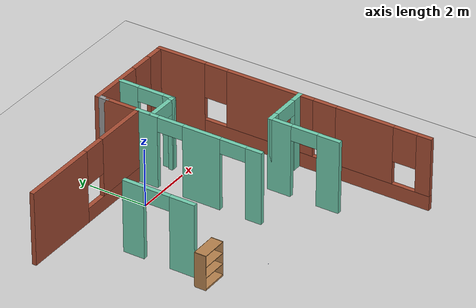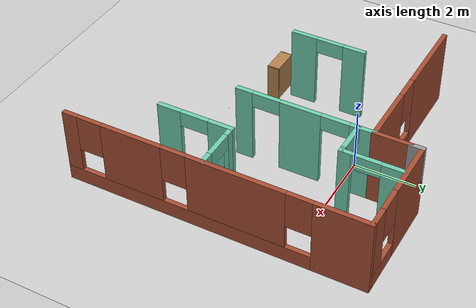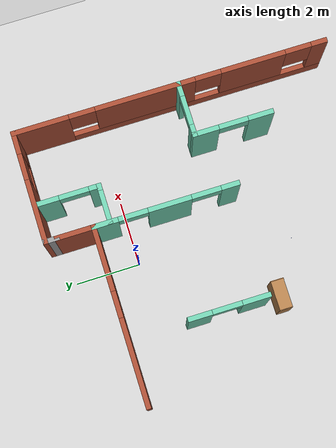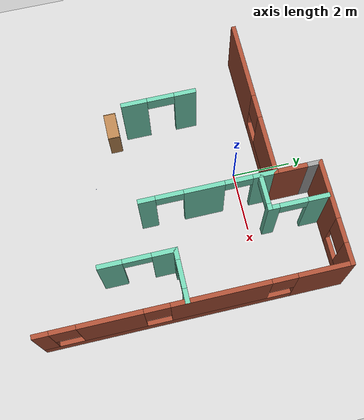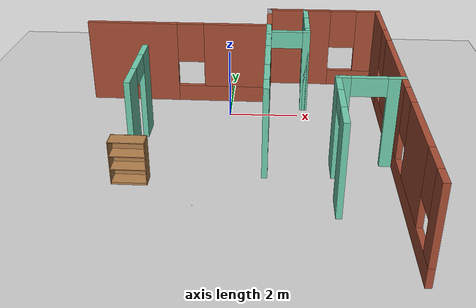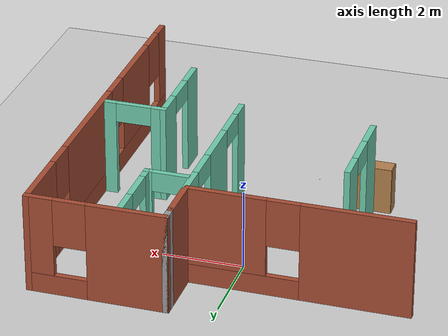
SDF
<sdf version="1.6">
 <world name="default">
  <model name="ground_plane">
   <static>1</static>
   <link name="link">
    <collision name="collision">
     <geometry><plane><normal>0 0 1</normal><size>100 100</size></plane></geometry>
     <surface>
      <contact><collide_bitmask>65535</collide_bitmask></contact>
      <friction><ode><mu>100</mu><mu2>50</mu2></ode></friction>
     </surface>
    </collision>
    <visual name="visual">
     <cast_shadows>0</cast_shadows>
     <geometry><plane><normal>0 0 1</normal><size>100 100</size></plane></geometry>
     <material>
      <script><uri>file://media/materials/scripts/gazebo.material</uri><name>Gazebo/Grey</name></script>
     </material>
    </visual>
   </link>
  </model>
  <model name="my_apartment">
   <pose>-3.10653 -3.79856 0 0 -0 0</pose>
   <link name="Wall_0">
    <pose>1.52918 4.775 0 0 -0 0</pose>
    <visual name="Wall_0_Visual_0">
     <pose>-1.4096 0 1.25 0 -0 0</pose>
     <geometry><box><size>2.6808 0.15 2.5</size></box></geometry>
     <material>
      <script><uri>file://media/materials/scripts/gazebo.material</uri><name>Gazebo/Bricks</name></script>
      <ambient>0.435294 0.796078 0.67451 1</ambient>
     </material>
     <meta><layer>0</layer></meta>
    </visual>
    <collision name="Wall_0_Collision_0">
     <geometry><box><size>2.6808 0.15 2.5</size></box></geometry>
     <pose>-1.4096 0 1.25 0 -0 0</pose>
    </collision>
    <visual name="Wall_0_Visual_1">
     <pose>1.3404 0 0.25 0 -0 0</pose>
     <geometry><box><size>2.8192 0.15 0.5</size></box></geometry>
     <material>
      <script><uri>file://media/materials/scripts/gazebo.material</uri><name>Gazebo/Bricks</name></script>
      <ambient>0.435294 0.796078 0.67451 1</ambient>
     </material>
     <meta><layer>0</layer></meta>
    </visual>
    <collision name="Wall_0_Collision_1">
     <geometry><box><size>2.8192 0.15 0.5</size></box></geometry>
     <pose>1.3404 0 0.25 0 -0 0</pose>
    </collision>
    <visual name="Wall_0_Visual_2">
     <pose>1.7404 0 1.5 0 -0 0</pose>
     <geometry><box><size>2.0192 0.15 2</size></box></geometry>
     <material>
      <script><uri>file://media/materials/scripts/gazebo.material</uri><name>Gazebo/Bricks</name></script>
      <ambient>0.435294 0.796078 0.67451 1</ambient>
     </material>
     <meta><layer>0</layer></meta>
    </visual>
    <collision name="Wall_0_Collision_2">
     <geometry><box><size>2.0192 0.15 2</size></box></geometry>
     <pose>1.7404 0 1.5 0 -0 0</pose>
    </collision>
    <visual name="Wall_0_Visual_3">
     <pose>0.330804 0 1.9 0 -0 0</pose>
     <geometry><box><size>0.8 0.15 1.2</size></box></geometry>
     <material>
      <script><uri>file://media/materials/scripts/gazebo.material</uri><name>Gazebo/Bricks</name></script>
      <ambient>0.435294 0.796078 0.67451 1</ambient>
     </material>
     <meta><layer>0</layer></meta>
    </visual>
    <collision name="Wall_0_Collision_3">
     <geometry><box><size>0.8 0.15 1.2</size></box></geometry>
     <pose>0.330804 0 1.9 0 -0 0</pose>
    </collision>
   </link>
   <link name="Wall_1">
    <collision name="Wall_1_Collision">
     <geometry><box><size>1.25 0.15 2.5</size></box></geometry>
     <pose>0 0 1.25 0 -0 0</pose>
    </collision>
    <visual name="Wall_1_Visual">
     <pose>0 0 1.25 0 -0 0</pose>
     <geometry><box><size>1.25 0.15 2.5</size></box></geometry>
     <material>
      <script><uri>file://media/materials/scripts/gazebo.material</uri><name>Gazebo/Bricks</name></script>
      <ambient>0.435294 0.796078 0.67451 1</ambient>
     </material>
     <meta><layer>0</layer></meta>
    </visual>
    <pose>4.20418 5.325 0 0 -0 1.5708</pose>
   </link>
   <link name="Wall_17">
    <pose>4.20435 2.59978 0 0 -0 1.57088</pose>
    <visual name="Wall_17_Visual_0">
     <pose>-1.96795 0 1.25 0 -0 0</pose>
     <geometry><box><size>0.564378 0.15 2.5</size></box></geometry>
     <material>
      <script><uri>file://media/materials/scripts/gazebo.material</uri><name>Gazebo/Grey</name></script>
      <ambient>0.435294 0.796078 0.67451 1</ambient>
     </material>
     <meta><layer>0</layer></meta>
    </visual>
    <collision name="Wall_17_Collision_0">
     <geometry><box><size>0.564378 0.15 2.5</size></box></geometry>
     <pose>-1.96795 0 1.25 0 -0 0</pose>
    </collision>
    <visual name="Wall_17_Visual_1">
     <pose>-0.125495 0 1.25 0 -0 0</pose>
     <geometry><box><size>1.32054 0.15 2.5</size></box></geometry>
     <material>
      <script><uri>file://media/materials/scripts/gazebo.material</uri><name>Gazebo/Grey</name></script>
      <ambient>0.435294 0.796078 0.67451 1</ambient>
     </material>
     <meta><layer>0</layer></meta>
    </visual>
    <collision name="Wall_17_Collision_1">
     <geometry><box><size>1.32054 0.15 2.5</size></box></geometry>
     <pose>-0.125495 0 1.25 0 -0 0</pose>
    </collision>
    <visual name="Wall_17_Visual_2">
     <pose>1.84246 0 1.25 0 -0 0</pose>
     <geometry><box><size>0.815367 0.15 2.5</size></box></geometry>
     <material>
      <script><uri>file://media/materials/scripts/gazebo.material</uri><name>Gazebo/Grey</name></script>
      <ambient>0.435294 0.796078 0.67451 1</ambient>
     </material>
     <meta><layer>0</layer></meta>
    </visual>
    <collision name="Wall_17_Collision_2">
     <geometry><box><size>0.815367 0.15 2.5</size></box></geometry>
     <pose>1.84246 0 1.25 0 -0 0</pose>
    </collision>
    <visual name="Wall_17_Visual_3">
     <pose>-1.23577 0 2.25 0 -0 0</pose>
     <geometry><box><size>0.9 0.15 0.5</size></box></geometry>
     <material>
      <script><uri>file://media/materials/scripts/gazebo.material</uri><name>Gazebo/Grey</name></script>
      <ambient>0.435294 0.796078 0.67451 1</ambient>
     </material>
     <meta><layer>0</layer></meta>
    </visual>
    <collision name="Wall_17_Collision_3">
     <geometry><box><size>0.9 0.15 0.5</size></box></geometry>
     <pose>-1.23577 0 2.25 0 -0 0</pose>
    </collision>
    <visual name="Wall_17_Visual_4">
     <pose>0.984776 0 2.25 0 -0 0</pose>
     <geometry><box><size>0.9 0.15 0.5</size></box></geometry>
     <material>
      <script><uri>file://media/materials/scripts/gazebo.material</uri><name>Gazebo/Grey</name></script>
      <ambient>0.435294 0.796078 0.67451 1</ambient>
     </material>
     <meta><layer>0</layer></meta>
    </visual>
    <collision name="Wall_17_Collision_4">
     <geometry><box><size>0.9 0.15 0.5</size></box></geometry>
     <pose>0.984776 0 2.25 0 -0 0</pose>
    </collision>
   </link>
   <link name="Wall_2">
    <collision name="Wall_2_Collision">
     <geometry><box><size>0.5 0.15 2.5</size></box></geometry>
     <pose>0 0 1.25 0 -0 0</pose>
    </collision>
    <visual name="Wall_2_Visual">
     <pose>0 0 1.25 0 -0 0</pose>
     <geometry><box><size>0.5 0.15 2.5</size></box></geometry>
     <material>
      <script><uri>file://media/materials/scripts/gazebo.material</uri><name>Gazebo/Grey</name></script>
      <ambient>1 1 1 1</ambient>
     </material>
     <meta><layer>0</layer></meta>
    </visual>
    <pose>4.20418 6.05 0 0 -0 1.5708</pose>
   </link>
   <link name="Wall_23">
    <pose>0.843373 1.74021 0 0 0 -1.5708</pose>
    <visual name="Wall_23_Visual_0">
     <pose>-0.881649 0 1.25 0 -0 0</pose>
     <geometry><box><size>0.736702 0.15 2.5</size></box></geometry>
     <material>
      <script><uri>file://media/materials/scripts/gazebo.material</uri><name>Gazebo/Grey</name></script>
      <ambient>0.435294 0.796078 0.67451 1</ambient>
     </material>
     <meta><layer>0</layer></meta>
    </visual>
    <collision name="Wall_23_Collision_0">
     <geometry><box><size>0.736702 0.15 2.5</size></box></geometry>
     <pose>-0.881649 0 1.25 0 -0 0</pose>
    </collision>
    <visual name="Wall_23_Visual_1">
     <pose>0.818351 0 1.25 0 -0 0</pose>
     <geometry><box><size>0.863298 0.15 2.5</size></box></geometry>
     <material>
      <script><uri>file://media/materials/scripts/gazebo.material</uri><name>Gazebo/Grey</name></script>
      <ambient>0.435294 0.796078 0.67451 1</ambient>
     </material>
     <meta><layer>0</layer></meta>
    </visual>
    <collision name="Wall_23_Collision_1">
     <geometry><box><size>0.863298 0.15 2.5</size></box></geometry>
     <pose>0.818351 0 1.25 0 -0 0</pose>
    </collision>
    <visual name="Wall_23_Visual_2">
     <pose>-0.063298 0 2.25 0 -0 0</pose>
     <geometry><box><size>0.9 0.15 0.5</size></box></geometry>
     <material>
      <script><uri>file://media/materials/scripts/gazebo.material</uri><name>Gazebo/Grey</name></script>
      <ambient>0.435294 0.796078 0.67451 1</ambient>
     </material>
     <meta><layer>0</layer></meta>
    </visual>
    <collision name="Wall_23_Collision_2">
     <geometry><box><size>0.9 0.15 0.5</size></box></geometry>
     <pose>-0.063298 0 2.25 0 -0 0</pose>
    </collision>
   </link>
   <link name="Wall_27">
    <pose>4.7693 4.27848 0 0 -0 0</pose>
    <visual name="Wall_27_Visual_0">
     <pose>-0.558063 0 1.25 0 -0 0</pose>
     <geometry><box><size>0.133873 0.15 2.5</size></box></geometry>
     <material>
      <script><uri>file://media/materials/scripts/gazebo.material</uri><name>Gazebo/Grey</name></script>
      <ambient>0.435294 0.796078 0.67451 1</ambient>
     </material>
     <meta><layer>0</layer></meta>
    </visual>
    <collision name="Wall_27_Collision_0">
     <geometry><box><size>0.133873 0.15 2.5</size></box></geometry>
     <pose>-0.558063 0 1.25 0 -0 0</pose>
    </collision>
    <visual name="Wall_27_Visual_1">
     <pose>0.516937 0 1.25 0 -0 0</pose>
     <geometry><box><size>0.216127 0.15 2.5</size></box></geometry>
     <material>
      <script><uri>file://media/materials/scripts/gazebo.material</uri><name>Gazebo/Grey</name></script>
      <ambient>0.435294 0.796078 0.67451 1</ambient>
     </material>
     <meta><layer>0</layer></meta>
    </visual>
    <collision name="Wall_27_Collision_1">
     <geometry><box><size>0.216127 0.15 2.5</size></box></geometry>
     <pose>0.516937 0 1.25 0 -0 0</pose>
    </collision>
    <visual name="Wall_27_Visual_2">
     <pose>-0.041127 0 2.25 0 -0 0</pose>
     <geometry><box><size>0.9 0.15 0.5</size></box></geometry>
     <material>
      <script><uri>file://media/materials/scripts/gazebo.material</uri><name>Gazebo/Grey</name></script>
      <ambient>0.435294 0.796078 0.67451 1</ambient>
     </material>
     <meta><layer>0</layer></meta>
    </visual>
    <collision name="Wall_27_Collision_2">
     <geometry><box><size>0.9 0.15 0.5</size></box></geometry>
     <pose>-0.041127 0 2.25 0 -0 0</pose>
    </collision>
   </link>
   <link name="Wall_28">
    <pose>5.3193 5.20348 0 0 -0 1.5708</pose>
    <visual name="Wall_28_Visual_0">
     <pose>-0.805845 0 1.25 0 -0 0</pose>
     <geometry><box><size>0.38831 0.15 2.5</size></box></geometry>
     <material>
      <script><uri>file://media/materials/scripts/gazebo.material</uri><name>Gazebo/Grey</name></script>
      <ambient>0.435294 0.796078 0.67451 1</ambient>
     </material>
     <meta><layer>0</layer></meta>
    </visual>
    <collision name="Wall_28_Collision_0">
     <geometry><box><size>0.38831 0.15 2.5</size></box></geometry>
     <pose>-0.805845 0 1.25 0 -0 0</pose>
    </collision>
    <visual name="Wall_28_Visual_1">
     <pose>0.644155 0 1.25 0 -0 0</pose>
     <geometry><box><size>0.71169 0.15 2.5</size></box></geometry>
     <material>
      <script><uri>file://media/materials/scripts/gazebo.material</uri><name>Gazebo/Grey</name></script>
      <ambient>0.435294 0.796078 0.67451 1</ambient>
     </material>
     <meta><layer>0</layer></meta>
    </visual>
    <collision name="Wall_28_Collision_1">
     <geometry><box><size>0.71169 0.15 2.5</size></box></geometry>
     <pose>0.644155 0 1.25 0 -0 0</pose>
    </collision>
    <visual name="Wall_28_Visual_2">
     <pose>-0.16169 0 2.25 0 -0 0</pose>
     <geometry><box><size>0.9 0.15 0.5</size></box></geometry>
     <material>
      <script><uri>file://media/materials/scripts/gazebo.material</uri><name>Gazebo/Grey</name></script>
      <ambient>0.435294 0.796078 0.67451 1</ambient>
     </material>
     <meta><layer>0</layer></meta>
    </visual>
    <collision name="Wall_28_Collision_2">
     <geometry><box><size>0.9 0.15 0.5</size></box></geometry>
     <pose>-0.16169 0 2.25 0 -0 0</pose>
    </collision>
   </link>
   <link name="Wall_3">
    <pose>5.87918 6.225 0 0 -0 0</pose>
    <visual name="Wall_3_Visual_0">
     <pose>-0.759972 0 1.25 0 -0 0</pose>
     <geometry><box><size>1.98006 0.15 2.5</size></box></geometry>
     <material>
      <script><uri>file://media/materials/scripts/gazebo.material</uri><name>Gazebo/Bricks</name></script>
      <ambient>0.435294 0.796078 0.67451 1</ambient>
     </material>
     <meta><layer>0</layer></meta>
    </visual>
    <collision name="Wall_3_Collision_0">
     <geometry><box><size>1.98006 0.15 2.5</size></box></geometry>
     <pose>-0.759972 0 1.25 0 -0 0</pose>
    </collision>
    <visual name="Wall_3_Visual_1">
     <pose>0.990028 0 0.25 0 -0 0</pose>
     <geometry><box><size>1.51994 0.15 0.5</size></box></geometry>
     <material>
      <script><uri>file://media/materials/scripts/gazebo.material</uri><name>Gazebo/Bricks</name></script>
      <ambient>0.435294 0.796078 0.67451 1</ambient>
     </material>
     <meta><layer>0</layer></meta>
    </visual>
    <collision name="Wall_3_Collision_1">
     <geometry><box><size>1.51994 0.15 0.5</size></box></geometry>
     <pose>0.990028 0 0.25 0 -0 0</pose>
    </collision>
    <visual name="Wall_3_Visual_2">
     <pose>1.39003 0 1.5 0 -0 0</pose>
     <geometry><box><size>0.719944 0.15 2</size></box></geometry>
     <material>
      <script><uri>file://media/materials/scripts/gazebo.material</uri><name>Gazebo/Bricks</name></script>
      <ambient>0.435294 0.796078 0.67451 1</ambient>
     </material>
     <meta><layer>0</layer></meta>
    </visual>
    <collision name="Wall_3_Collision_2">
     <geometry><box><size>0.719944 0.15 2</size></box></geometry>
     <pose>1.39003 0 1.5 0 -0 0</pose>
    </collision>
    <visual name="Wall_3_Visual_3">
     <pose>0.630056 0 1.9 0 -0 0</pose>
     <geometry><box><size>0.8 0.15 1.2</size></box></geometry>
     <material>
      <script><uri>file://media/materials/scripts/gazebo.material</uri><name>Gazebo/Bricks</name></script>
      <ambient>0.435294 0.796078 0.67451 1</ambient>
     </material>
     <meta><layer>0</layer></meta>
    </visual>
    <collision name="Wall_3_Collision_3">
     <geometry><box><size>0.8 0.15 1.2</size></box></geometry>
     <pose>0.630056 0 1.9 0 -0 0</pose>
    </collision>
   </link>
   <link name="Wall_36">
    <pose>5.9541 -0.005345 0 0 -0 1.5708</pose>
    <visual name="Wall_36_Visual_0">
     <pose>-0.859235 0 1.25 0 -0 0</pose>
     <geometry><box><size>0.78153 0.15 2.5</size></box></geometry>
     <material>
      <script><uri>file://media/materials/scripts/gazebo.material</uri><name>Gazebo/Grey</name></script>
      <ambient>0.435294 0.796078 0.67451 1</ambient>
     </material>
     <meta><layer>0</layer></meta>
    </visual>
    <collision name="Wall_36_Collision_0">
     <geometry><box><size>0.78153 0.15 2.5</size></box></geometry>
     <pose>-0.859235 0 1.25 0 -0 0</pose>
    </collision>
    <visual name="Wall_36_Visual_1">
     <pose>0.840765 0 1.25 0 -0 0</pose>
     <geometry><box><size>0.81847 0.15 2.5</size></box></geometry>
     <material>
      <script><uri>file://media/materials/scripts/gazebo.material</uri><name>Gazebo/Grey</name></script>
      <ambient>0.435294 0.796078 0.67451 1</ambient>
     </material>
     <meta><layer>0</layer></meta>
    </visual>
    <collision name="Wall_36_Collision_1">
     <geometry><box><size>0.81847 0.15 2.5</size></box></geometry>
     <pose>0.840765 0 1.25 0 -0 0</pose>
    </collision>
    <visual name="Wall_36_Visual_2">
     <pose>-0.01847 0 2.25 0 -0 0</pose>
     <geometry><box><size>0.9 0.15 0.5</size></box></geometry>
     <material>
      <script><uri>file://media/materials/scripts/gazebo.material</uri><name>Gazebo/Grey</name></script>
      <ambient>0.435294 0.796078 0.67451 1</ambient>
     </material>
     <meta><layer>0</layer></meta>
    </visual>
    <collision name="Wall_36_Collision_2">
     <geometry><box><size>0.9 0.15 0.5</size></box></geometry>
     <pose>-0.01847 0 2.25 0 -0 0</pose>
    </collision>
   </link>
   <link name="Wall_37">
    <pose>6.7541 1.16965 0 0 -0 0</pose>
    <visual name="Wall_37_Visual_0">
     <pose>-0.680845 0 1.25 0 -0 0</pose>
     <geometry><box><size>0.38831 0.15 2.5</size></box></geometry>
     <material>
      <script><uri>file://media/materials/scripts/gazebo.material</uri><name>Gazebo/Grey</name></script>
      <ambient>0.435294 0.796078 0.67451 1</ambient>
     </material>
     <meta><layer>0</layer></meta>
    </visual>
    <collision name="Wall_37_Collision_0">
     <geometry><box><size>0.38831 0.15 2.5</size></box></geometry>
     <pose>-0.680845 0 1.25 0 -0 0</pose>
    </collision>
    <visual name="Wall_37_Visual_1">
     <pose>0.644155 0 1.25 0 -0 0</pose>
     <geometry><box><size>0.46169 0.15 2.5</size></box></geometry>
     <material>
      <script><uri>file://media/materials/scripts/gazebo.material</uri><name>Gazebo/Grey</name></script>
      <ambient>0.435294 0.796078 0.67451 1</ambient>
     </material>
     <meta><layer>0</layer></meta>
    </visual>
    <collision name="Wall_37_Collision_1">
     <geometry><box><size>0.46169 0.15 2.5</size></box></geometry>
     <pose>0.644155 0 1.25 0 -0 0</pose>
    </collision>
    <visual name="Wall_37_Visual_2">
     <pose>-0.03669 0 2.25 0 -0 0</pose>
     <geometry><box><size>0.9 0.15 0.5</size></box></geometry>
     <material>
      <script><uri>file://media/materials/scripts/gazebo.material</uri><name>Gazebo/Grey</name></script>
      <ambient>0.435294 0.796078 0.67451 1</ambient>
     </material>
     <meta><layer>0</layer></meta>
    </visual>
    <collision name="Wall_37_Collision_2">
     <geometry><box><size>0.9 0.15 0.5</size></box></geometry>
     <pose>-0.03669 0 2.25 0 -0 0</pose>
    </collision>
   </link>
   <link name="Wall_4">
    <pose>7.55418 1.425 0 0 0 -1.5708</pose>
    <visual name="Wall_4_Visual_0">
     <pose>-3.99485 0 1.25 0 -0 0</pose>
     <geometry><box><size>1.76031 0.15 2.5</size></box></geometry>
     <material>
      <script><uri>file://media/materials/scripts/gazebo.material</uri><name>Gazebo/Bricks</name></script>
      <ambient>0.435294 0.796078 0.67451 1</ambient>
     </material>
     <meta><layer>0</layer></meta>
    </visual>
    <collision name="Wall_4_Collision_0">
     <geometry><box><size>1.76031 0.15 2.5</size></box></geometry>
     <pose>-3.99485 0 1.25 0 -0 0</pose>
    </collision>
    <visual name="Wall_4_Visual_1">
     <pose>0.880153 0 0.25 0 -0 0</pose>
     <geometry><box><size>7.98969 0.15 0.5</size></box></geometry>
     <material>
      <script><uri>file://media/materials/scripts/gazebo.material</uri><name>Gazebo/Bricks</name></script>
      <ambient>0.435294 0.796078 0.67451 1</ambient>
     </material>
     <meta><layer>0</layer></meta>
    </visual>
    <collision name="Wall_4_Collision_1">
     <geometry><box><size>7.98969 0.15 0.5</size></box></geometry>
     <pose>0.880153 0 0.25 0 -0 0</pose>
    </collision>
    <visual name="Wall_4_Visual_2">
     <pose>-0.771723 0 1.5 0 -0 0</pose>
     <geometry><box><size>3.08594 0.15 2</size></box></geometry>
     <material>
      <script><uri>file://media/materials/scripts/gazebo.material</uri><name>Gazebo/Bricks</name></script>
      <ambient>0.435294 0.796078 0.67451 1</ambient>
     </material>
     <meta><layer>0</layer></meta>
    </visual>
    <collision name="Wall_4_Collision_2">
     <geometry><box><size>3.08594 0.15 2</size></box></geometry>
     <pose>-0.771723 0 1.5 0 -0 0</pose>
    </collision>
    <visual name="Wall_4_Visual_3">
     <pose>2.57065 0 1.5 0 -0 0</pose>
     <geometry><box><size>1.9988 0.15 2</size></box></geometry>
     <material>
      <script><uri>file://media/materials/scripts/gazebo.material</uri><name>Gazebo/Bricks</name></script>
      <ambient>0.435294 0.796078 0.67451 1</ambient>
     </material>
     <meta><layer>0</layer></meta>
    </visual>
    <collision name="Wall_4_Collision_3">
     <geometry><box><size>1.9988 0.15 2</size></box></geometry>
     <pose>2.57065 0 1.5 0 -0 0</pose>
    </collision>
    <visual name="Wall_4_Visual_4">
     <pose>4.62253 0 1.5 0 -0 0</pose>
     <geometry><box><size>0.504949 0.15 2</size></box></geometry>
     <material>
      <script><uri>file://media/materials/scripts/gazebo.material</uri><name>Gazebo/Bricks</name></script>
      <ambient>0.435294 0.796078 0.67451 1</ambient>
     </material>
     <meta><layer>0</layer></meta>
    </visual>
    <collision name="Wall_4_Collision_4">
     <geometry><box><size>0.504949 0.15 2</size></box></geometry>
     <pose>4.62253 0 1.5 0 -0 0</pose>
    </collision>
    <visual name="Wall_4_Visual_5">
     <pose>-2.71469 0 1.9 0 -0 0</pose>
     <geometry><box><size>0.8 0.15 1.2</size></box></geometry>
     <material>
      <script><uri>file://media/materials/scripts/gazebo.material</uri><name>Gazebo/Bricks</name></script>
      <ambient>0.435294 0.796078 0.67451 1</ambient>
     </material>
     <meta><layer>0</layer></meta>
    </visual>
    <collision name="Wall_4_Collision_5">
     <geometry><box><size>0.8 0.15 1.2</size></box></geometry>
     <pose>-2.71469 0 1.9 0 -0 0</pose>
    </collision>
    <visual name="Wall_4_Visual_6">
     <pose>1.17125 0 1.9 0 -0 0</pose>
     <geometry><box><size>0.8 0.15 1.2</size></box></geometry>
     <material>
      <script><uri>file://media/materials/scripts/gazebo.material</uri><name>Gazebo/Bricks</name></script>
      <ambient>0.435294 0.796078 0.67451 1</ambient>
     </material>
     <meta><layer>0</layer></meta>
    </visual>
    <collision name="Wall_4_Collision_6">
     <geometry><box><size>0.8 0.15 1.2</size></box></geometry>
     <pose>1.17125 0 1.9 0 -0 0</pose>
    </collision>
    <visual name="Wall_4_Visual_7">
     <pose>3.97005 0 1.9 0 -0 0</pose>
     <geometry><box><size>0.8 0.15 1.2</size></box></geometry>
     <material>
      <script><uri>file://media/materials/scripts/gazebo.material</uri><name>Gazebo/Bricks</name></script>
      <ambient>0.435294 0.796078 0.67451 1</ambient>
     </material>
     <meta><layer>0</layer></meta>
    </visual>
    <collision name="Wall_4_Collision_7">
     <geometry><box><size>0.8 0.15 1.2</size></box></geometry>
     <pose>3.97005 0 1.9 0 -0 0</pose>
    </collision>
   </link>
   <static>1</static>
  </model>
  <model name="bookshelf">
   <static>1</static>
   <link name="link">
    <inertial><mass>1</mass></inertial>
    <collision name="back">
     <pose>0 0.005 0.6 0 -0 0</pose>
     <geometry><box><size>0.9 0.01 1.2</size></box></geometry>
    </collision>
    <visual name="visual1">
     <pose>0 0.005 0.6 0 -0 0</pose>
     <geometry><box><size>0.9 0.01 1.2</size></box></geometry>
     <material>
      <script><uri>file://media/materials/scripts/gazebo.material</uri><name>Gazebo/Wood</name></script>
     </material>
    </visual>
    <collision name="left_side">
     <pose>0.45 -0.195 0.6 0 -0 0</pose>
     <geometry><box><size>0.02 0.4 1.2</size></box></geometry>
    </collision>
    <visual name="visual2">
     <pose>0.45 -0.195 0.6 0 -0 0</pose>
     <geometry><box><size>0.02 0.4 1.2</size></box></geometry>
     <material>
      <script><uri>file://media/materials/scripts/gazebo.material</uri><name>Gazebo/Wood</name></script>
     </material>
    </visual>
    <collision name="right_side">
     <pose>-0.45 -0.195 0.6 0 -0 0</pose>
     <geometry><box><size>0.02 0.4 1.2</size></box></geometry>
    </collision>
    <visual name="visual3">
     <pose>-0.45 -0.195 0.6 0 -0 0</pose>
     <geometry><box><size>0.02 0.4 1.2</size></box></geometry>
     <material>
      <script><uri>file://media/materials/scripts/gazebo.material</uri><name>Gazebo/Wood</name></script>
     </material>
    </visual>
    <collision name="bottom">
     <pose>0 -0.195 0.03 0 -0 0</pose>
     <geometry><box><size>0.88 0.4 0.06</size></box></geometry>
    </collision>
    <visual name="visual4">
     <pose>0 -0.195 0.03 0 -0 0</pose>
     <geometry><box><size>0.88 0.4 0.06</size></box></geometry>
     <material>
      <script><uri>file://media/materials/scripts/gazebo.material</uri><name>Gazebo/Wood</name></script>
     </material>
    </visual>
    <collision name="top">
     <pose>0 -0.195 1.19 0 -0 0</pose>
     <geometry><box><size>0.88 0.4 0.02</size></box></geometry>
    </collision>
    <visual name="visual5">
     <pose>0 -0.195 1.19 0 -0 0</pose>
     <geometry><box><size>0.88 0.4 0.02</size></box></geometry>
     <material>
      <script><uri>file://media/materials/scripts/gazebo.material</uri><name>Gazebo/Wood</name></script>
     </material>
    </visual>
    <collision name="low_shelf">
     <pose>0 -0.195 0.43 0 -0 0</pose>
     <geometry><box><size>0.88 0.4 0.02</size></box></geometry>
    </collision>
    <visual name="visual6">
     <pose>0 -0.195 0.43 0 -0 0</pose>
     <geometry><box><size>0.88 0.4 0.02</size></box></geometry>
     <material>
      <script><uri>file://media/materials/scripts/gazebo.material</uri><name>Gazebo/Wood</name></script>
     </material>
    </visual>
    <collision name="high_shelf">
     <pose>0 -0.195 0.8 0 -0 0</pose>
     <geometry><box><size>0.88 0.4 0.02</size></box></geometry>
    </collision>
    <visual name="visual7">
     <pose>0 -0.195 0.8 0 -0 0</pose>
     <geometry><box><size>0.88 0.4 0.02</size></box></geometry>
     <material>
      <script><uri>file://media/materials/scripts/gazebo.material</uri><name>Gazebo/Wood</name></script>
     </material>
    </visual>
   </link>
   <pose>-2.25669 -3.55605 0 0 -0 0</pose>
  </model>
  <model name="marble_1_5cm">
   <link name="link">
    <pose>0 0 0.0075 0 -0 0</pose>
    <inertial>
     <mass>0.0062</mass>
     <inertia>
      <ixx>1.395e-07</ixx>
      <ixy>0</ixy>
      <ixz>0</ixz>
      <iyy>1.395e-07</iyy>
      <iyz>0</iyz>
      <izz>1.395e-07</izz>
     </inertia>
    </inertial>
    <collision name="collision">
     <geometry><sphere><radius>0.0075</radius></sphere></geometry>
     <surface>
      <contact>
       <poissons_ratio>0.22</poissons_ratio>
       <elastic_modulus>5.1e+10</elastic_modulus>
       <ode><kp>100000</kp><kd>100</kd><max_vel>100</max_vel><min_depth>0.001</min_depth></ode>
      </contact>
      <friction>
       <torsional>
        <coefficient>1</coefficient>
        <use_patch_radius>0</use_patch_radius>
        <surface_radius>0.01</surface_radius>
       </torsional>
      </friction>
     </surface>
    </collision>
    <visual name="visual">
     <geometry><sphere><radius>0.0075</radius></sphere></geometry>
     <material>
      <script><uri>file://media/materials/scripts/gazebo.material</uri><name>Gazebo/Blue</name></script>
     </material>
    </visual>
    <velocity_decay><linear>0</linear><angular>0.005</angular></velocity_decay>
   </link>
   <pose>-0.587024 -4.73734 -0.001001 0 -0 0</pose>
  </model>
 </world>
</sdf>
